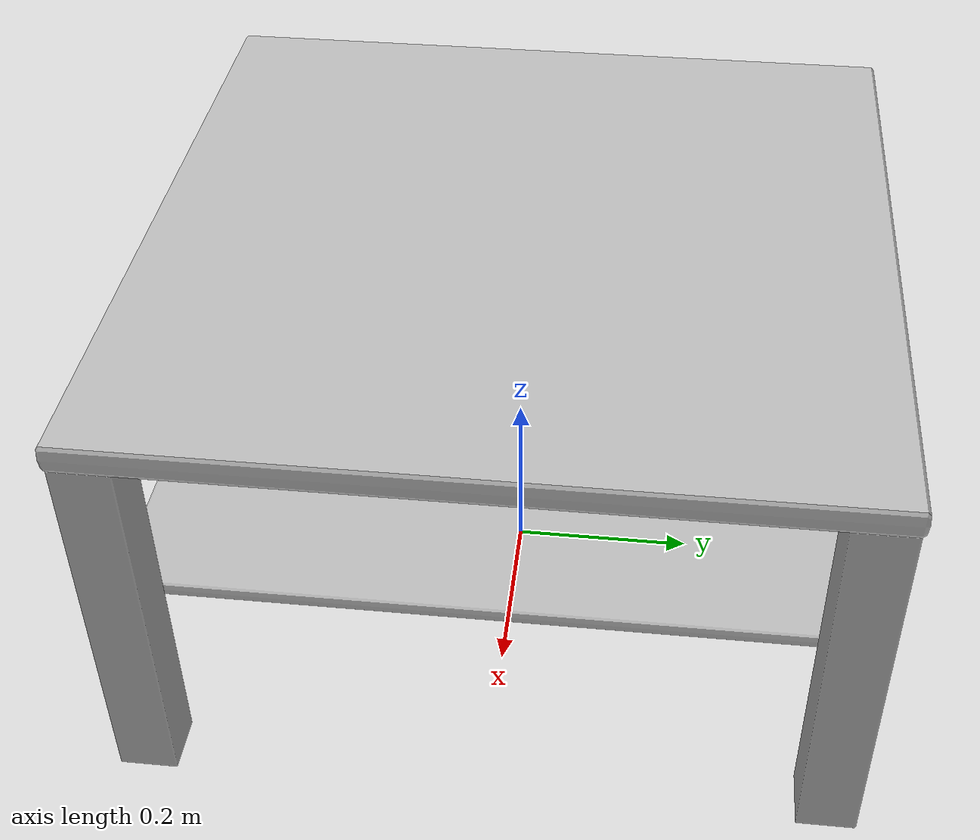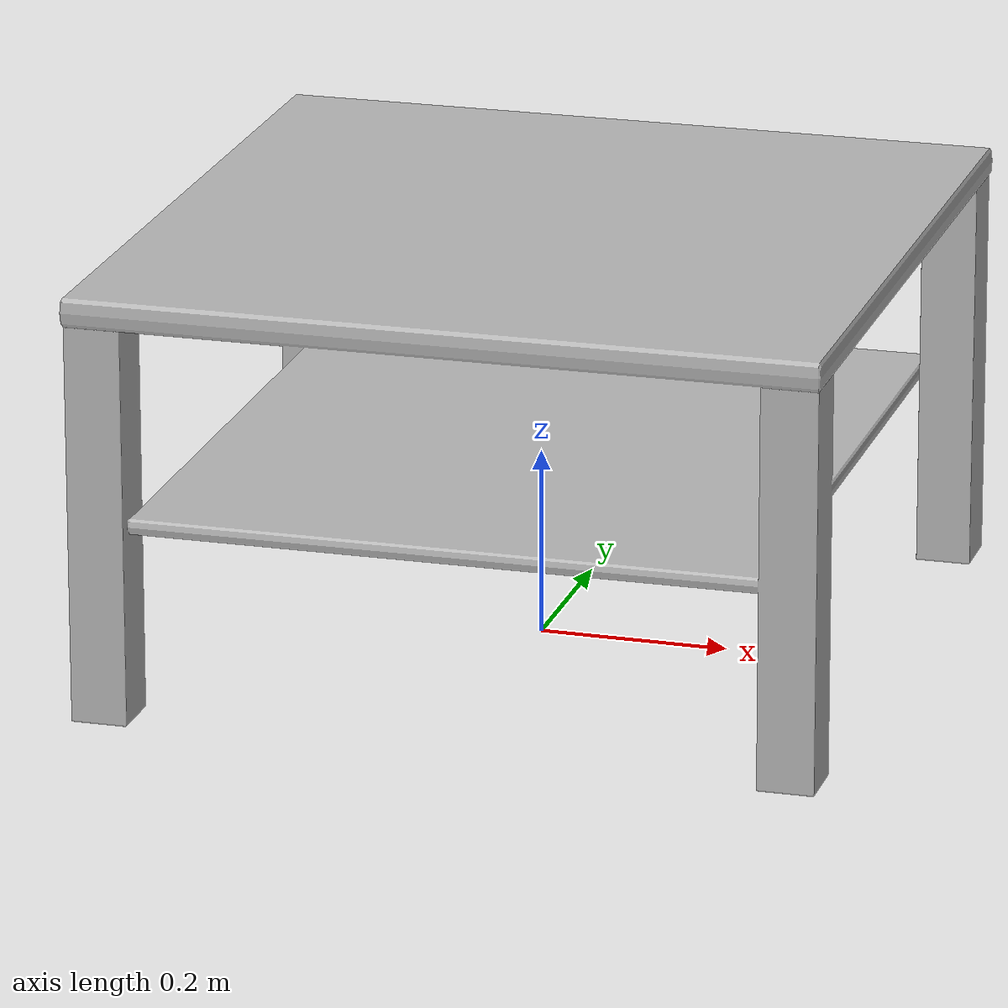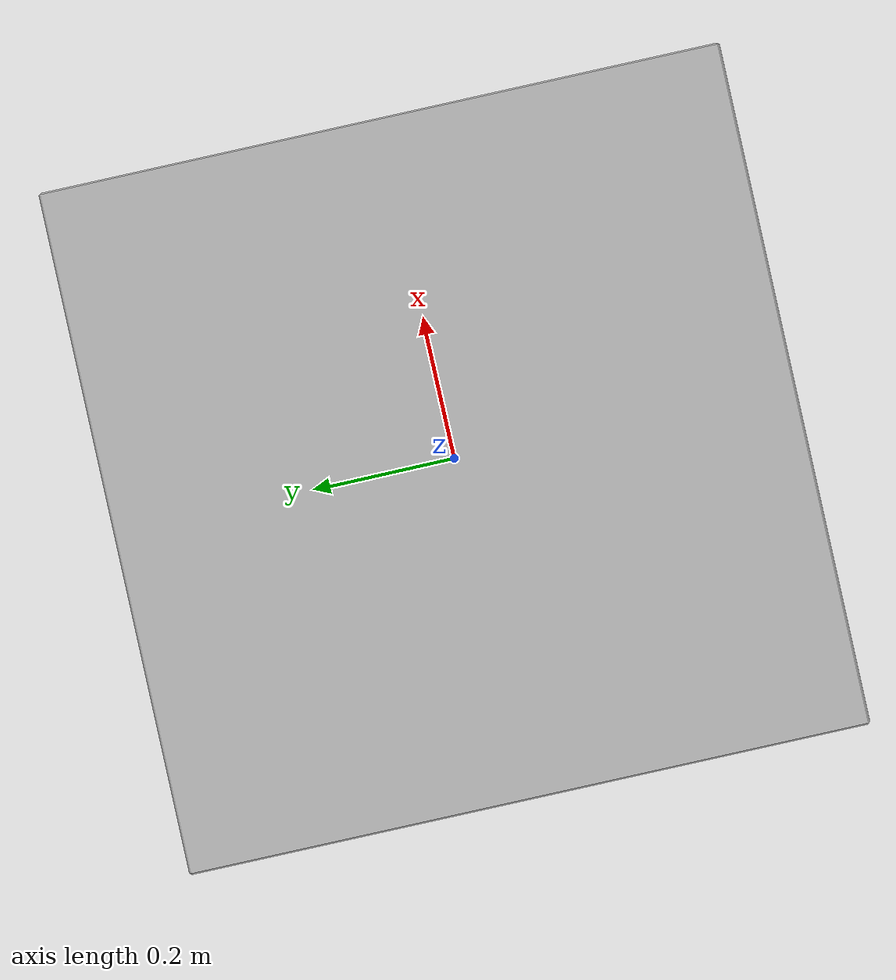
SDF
<?xml version='1.0'?>
<sdf version='1.4'>
  <model name='71'>
    <pose>0 0 0 0 0 0</pose>
    <static>true</static>
    <link name='link'>
      <collision name='collision'>
        <pose>0 0 0 0 0 0</pose>
        <geometry>
          <box>
            <size>0.78 0.78 2</size>
          </box>
        </geometry>
      </collision>
      <visual name='visual'>
        <pose>0 0 0 0 0 0</pose>
        <geometry>
          <mesh><uri>model://71/71.dae</uri></mesh>
        </geometry>
      </visual>
    </link>
  </model>
</sdf>
